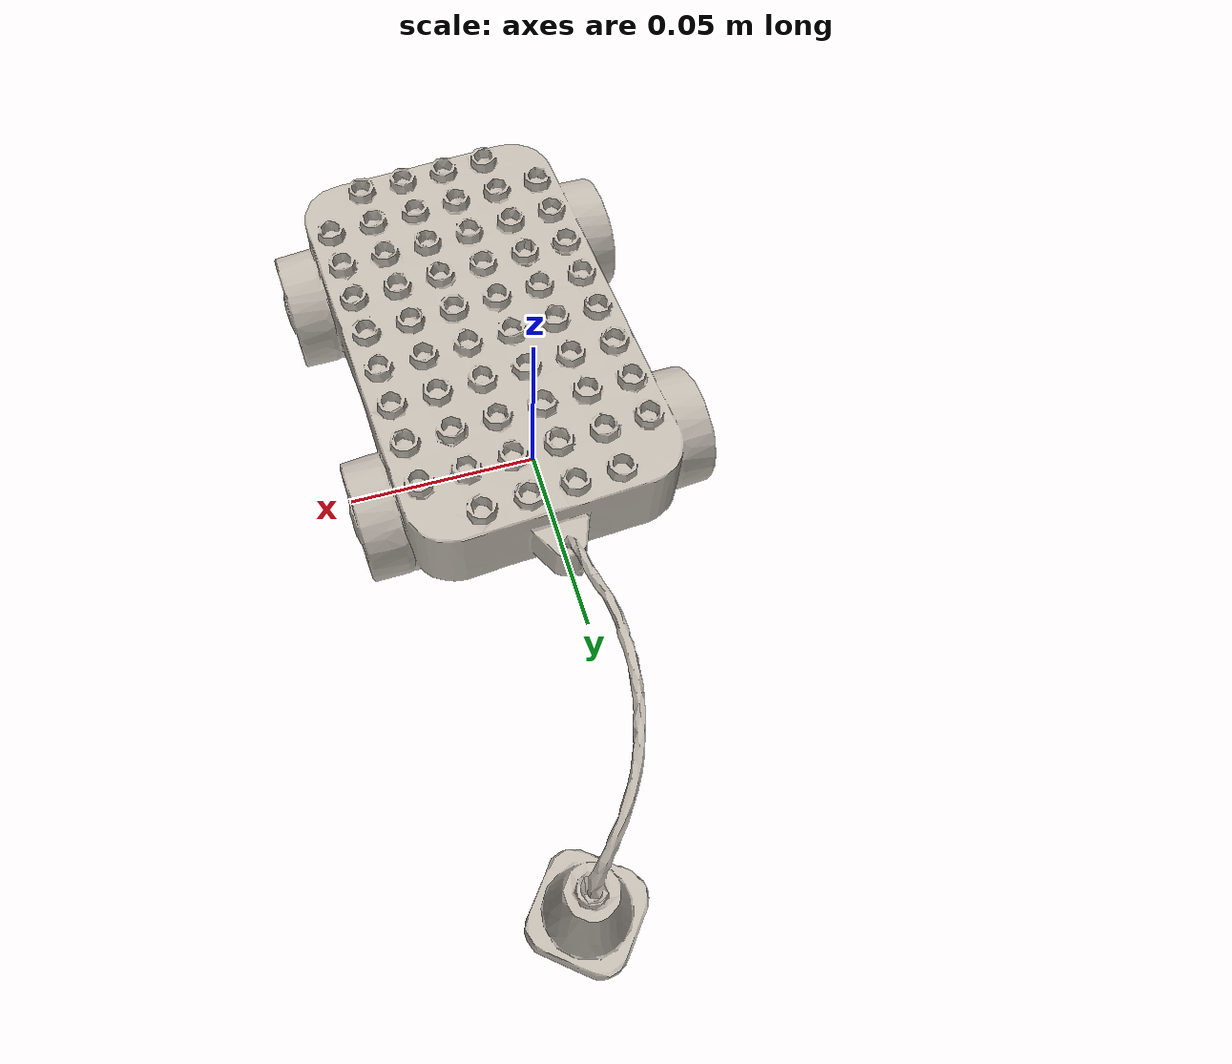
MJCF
<mujoco model="bread">
  <asset>
    <mesh file="nontextured.stl" name="obj_mesh" scale="0.8 0.8 0.8"/>
    <texture file="../../../../../textures/bread.png" type="2d" name="tex-bread" />
    <material name="bread" reflectance="0.7" texrepeat="15 15" texture="tex-bread" texuniform="true"/>
  </asset>
  <worldbody>
    <body>
      <body name="collision">
        <geom pos="0.015861999999999998 0.03152 -0.028916" mesh="obj_mesh" type="mesh" solimp="0.998 0.998 0.001" solref="0.001 1" density="50" friction="0.95 0.3 0.1"  material="bread" group="1" condim="4"/>
      </body>
      <body name="visual">
        <geom pos="0.015861999999999998 0.03152 -0.028916" mesh="obj_mesh" type="mesh" material="bread"  conaffinity="0" contype="0"  group="0" mass="0.0001"/>
        <geom pos="0.015861999999999998 0.03152 -0.028916" mesh="obj_mesh" type="mesh" material="bread"  conaffinity="0" contype="0"  group="1" mass="0.0001"/>
      </body>
      <site rgba="0 0 0 0" size="0.005" pos="0 0 -0.029999" name="bottom_site"/>
      <site rgba="0 0 0 0" size="0.005" pos="0 0 0.029999" name="top_site"/>
      <site rgba="0 0 0 0" size="0.005" pos="0.06680799999999999 0.152043 0.029999" name="horizontal_radius_site"/>
    </body>
  </worldbody>
</mujoco>
